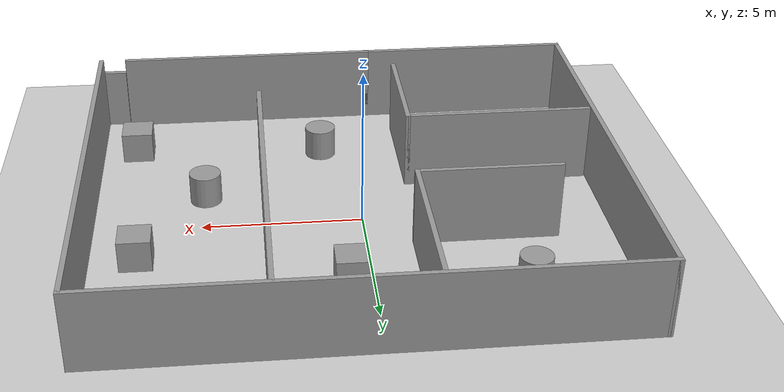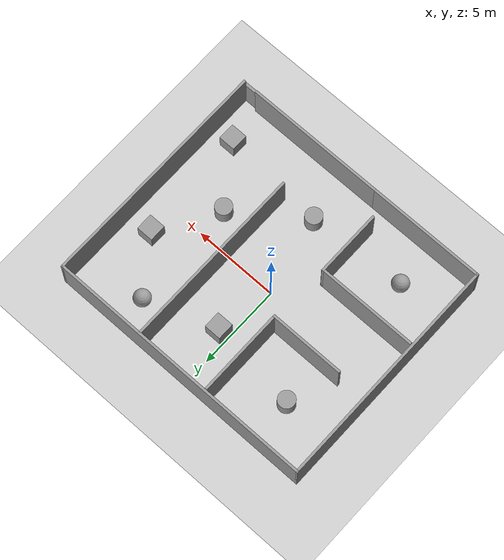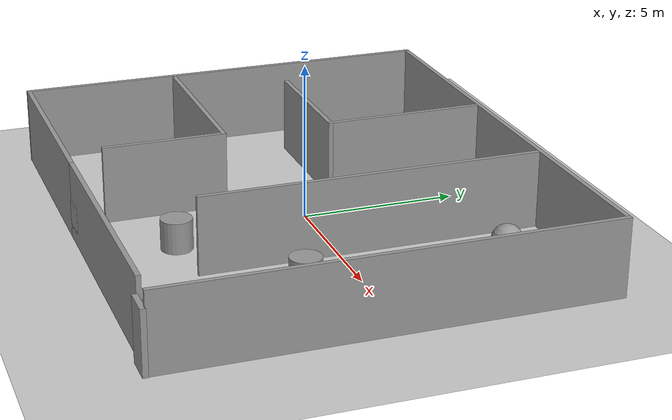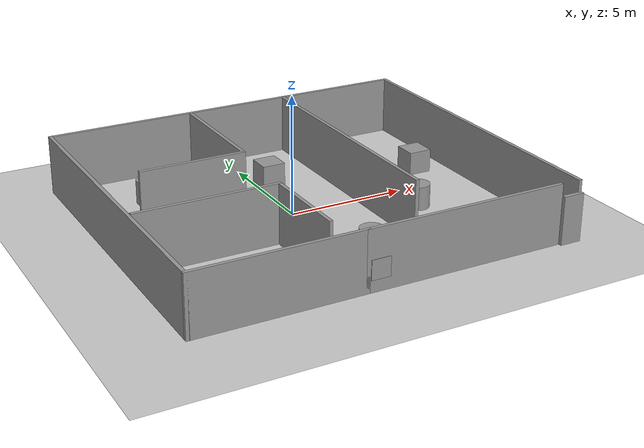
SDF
<sdf version="1.7">
 <world name="default">
  <light name="sun" type="directional">
   <pose>0 0 10 0 -0 0</pose>
   <diffuse>0.8 0.8 0.8 1</diffuse>
   <specular>0.2 0.2 0.2 1</specular>
   <attenuation>
    <range>1000</range>
    <constant>0.9</constant>
    <linear>0.01</linear>
    <quadratic>0.001</quadratic>
   </attenuation>
   <direction>-0.5 0.1 -0.9</direction>
   <spot><inner_angle>0</inner_angle><outer_angle>0</outer_angle><falloff>0</falloff></spot>
  </light>
  <model name="ground_plane">
   <static>1</static>
   <link name="link">
    <collision name="collision">
     <geometry><plane><normal>0 0 1</normal><size>100 100</size></plane></geometry>
     <surface><friction><ode><mu>100</mu><mu2>50</mu2></ode></friction></surface>
    </collision>
    <visual name="visual">
     <cast_shadows>0</cast_shadows>
     <geometry><plane><normal>0 0 1</normal><size>100 100</size></plane></geometry>
     <material>
      <script><uri>file://media/materials/scripts/gazebo.material</uri><name>Gazebo/Grey</name></script>
     </material>
    </visual>
   </link>
  </model>
  <gravity>0 0 -9.8</gravity>
  <magnetic_field>6e-06 2.3e-05 -4.2e-05</magnetic_field>
  <atmosphere type="adiabatic"/>
  <physics type="ode">
   <max_step_size>0.001</max_step_size>
   <real_time_factor>1</real_time_factor>
   <real_time_update_rate>1000</real_time_update_rate>
  </physics>
  <scene><ambient>0.4 0.4 0.4 1</ambient><background>0.7 0.7 0.7 1</background><shadows>1</shadows></scene>
  <audio><device>default</device></audio>
  <spherical_coordinates>
   <surface_model>EARTH_WGS84</surface_model>
   <latitude_deg>0</latitude_deg>
   <longitude_deg>0</longitude_deg>
   <elevation>0</elevation>
   <heading_deg>0</heading_deg>
  </spherical_coordinates>
  <model name="world">
   <pose>0.352034 -0.289109 0 0 -0 0</pose>
   <link name="Door_0">
    <collision name="Door_0_Collision">
     <geometry><box><size>0.9 0.17 2</size></box></geometry>
     <pose>0 0 1 0 -0 0</pose>
    </collision>
    <visual name="Door_0_Visual">
     <pose>0 0 1 0 -0 0</pose>
     <geometry><box><size>0.9 0.17 2</size></box></geometry>
     <material>
      <script><uri>file://media/materials/scripts/gazebo.material</uri><name>Gazebo/Grey</name></script>
     </material>
    </visual>
    <pose>7.69908 -7.04958 0 0 -0 0</pose>
   </link>
   <link name="Wall_11">
    <collision name="Wall_11_Collision">
     <geometry><box><size>5.25 0.15 2.5</size></box></geometry>
     <pose>0 0 1.25 0 -0 0</pose>
    </collision>
    <visual name="Wall_11_Visual">
     <pose>0 0 1.25 0 -0 0</pose>
     <geometry><box><size>5.25 0.15 2.5</size></box></geometry>
     <material>
      <script><uri>file://media/materials/scripts/gazebo.material</uri><name>Gazebo/Grey</name></script>
      <ambient>1 1 1 1</ambient>
     </material>
     <meta><layer>0</layer></meta>
    </visual>
    <pose>-1.82437 4.22158 0 0 -0 -1.5708</pose>
   </link>
   <link name="Wall_12">
    <collision name="Wall_12_Collision">
     <geometry><box><size>4.5 0.15 2.5</size></box></geometry>
     <pose>0 0 1.25 0 -0 0</pose>
    </collision>
    <visual name="Wall_12_Visual">
     <pose>0 0 1.25 0 -0 0</pose>
     <geometry><box><size>4.5 0.15 2.5</size></box></geometry>
     <material>
      <script><uri>file://media/materials/scripts/gazebo.material</uri><name>Gazebo/Grey</name></script>
      <ambient>1 1 1 1</ambient>
     </material>
     <meta><layer>0</layer></meta>
    </visual>
    <pose>-3.99937 1.67158 0 0 -0 3.14159</pose>
   </link>
   <link name="Wall_14">
    <collision name="Wall_14_Collision">
     <geometry><box><size>11 0.15 2.5</size></box></geometry>
     <pose>0 0 1.25 0 -0 0</pose>
    </collision>
    <visual name="Wall_14_Visual">
     <pose>0 0 1.25 0 -0 0</pose>
     <geometry><box><size>11 0.15 2.5</size></box></geometry>
     <material>
      <script><uri>file://media/materials/scripts/gazebo.material</uri><name>Gazebo/Grey</name></script>
      <ambient>1 1 1 1</ambient>
     </material>
     <meta><layer>0</layer></meta>
    </visual>
    <pose>2.66985 1.41856 0 0 -0 -1.5708</pose>
   </link>
   <link name="Wall_16">
    <collision name="Wall_16_Collision">
     <geometry><box><size>6 0.15 2.5</size></box></geometry>
     <pose>0 0 1.25 0 -0 0</pose>
    </collision>
    <visual name="Wall_16_Visual">
     <pose>0 0 1.25 0 -0 0</pose>
     <geometry><box><size>6 0.15 2.5</size></box></geometry>
     <material>
      <script><uri>file://media/materials/scripts/gazebo.material</uri><name>Gazebo/Grey</name></script>
      <ambient>1 1 1 1</ambient>
     </material>
     <meta><layer>0</layer></meta>
    </visual>
    <pose>-4.94515 -1.85984 0 0 -0 0</pose>
   </link>
   <link name="Wall_17">
    <collision name="Wall_17_Collision">
     <geometry><box><size>4 0.15 2.5</size></box></geometry>
     <pose>0 0 1.25 0 -0 0</pose>
    </collision>
    <visual name="Wall_17_Visual">
     <pose>0 0 1.25 0 -0 0</pose>
     <geometry><box><size>4 0.15 2.5</size></box></geometry>
     <material>
      <script><uri>file://media/materials/scripts/gazebo.material</uri><name>Gazebo/Grey</name></script>
      <ambient>1 1 1 1</ambient>
     </material>
     <meta><layer>0</layer></meta>
    </visual>
    <pose>-2.02015 -3.78484 0 0 -0 -1.5708</pose>
   </link>
   <link name="Wall_2">
    <collision name="Wall_2_Collision">
     <geometry><box><size>14 0.15 2.5</size></box></geometry>
     <pose>0 0 1.25 0 -0 0</pose>
    </collision>
    <visual name="Wall_2_Visual">
     <pose>0 0 1.25 0 -0 0</pose>
     <geometry><box><size>14 0.15 2.5</size></box></geometry>
     <material>
      <script><uri>file://media/materials/scripts/gazebo.material</uri><name>Gazebo/Grey</name></script>
      <ambient>1 1 1 1</ambient>
     </material>
     <meta><layer>0</layer></meta>
    </visual>
    <pose>-8.05 0 0 0 -0 1.5708</pose>
   </link>
   <link name="Wall_3">
    <collision name="Wall_3_Collision">
     <geometry><box><size>16.25 0.15 2.5</size></box></geometry>
     <pose>0 0 1.25 0 -0 0</pose>
    </collision>
    <visual name="Wall_3_Visual">
     <pose>0 0 1.25 0 -0 0</pose>
     <geometry><box><size>16.25 0.15 2.5</size></box></geometry>
     <material>
      <script><uri>file://media/materials/scripts/gazebo.material</uri><name>Gazebo/Grey</name></script>
      <ambient>1 1 1 1</ambient>
     </material>
     <meta><layer>0</layer></meta>
    </visual>
    <pose>0 6.925 0 0 -0 0</pose>
   </link>
   <link name="Wall_5">
    <collision name="Wall_5_Collision">
     <geometry><box><size>14 0.15 2.5</size></box></geometry>
     <pose>0 0 1.25 0 -0 0</pose>
    </collision>
    <visual name="Wall_5_Visual">
     <pose>0 0 1.25 0 -0 0</pose>
     <geometry><box><size>14 0.15 2.5</size></box></geometry>
     <material>
      <script><uri>file://media/materials/scripts/gazebo.material</uri><name>Gazebo/Grey</name></script>
      <ambient>1 1 1 1</ambient>
     </material>
     <meta><layer>0</layer></meta>
    </visual>
    <pose>8.05 0 0 0 -0 -1.5708</pose>
   </link>
   <link name="Wall_7">
    <collision name="Wall_7_Collision">
     <geometry><box><size>7 0.15 2.5</size></box></geometry>
     <pose>0 0 1.25 0 -0 0</pose>
    </collision>
    <visual name="Wall_7_Visual">
     <pose>0 0 1.25 0 -0 0</pose>
     <geometry><box><size>7 0.15 2.5</size></box></geometry>
     <material>
      <script><uri>file://media/materials/scripts/gazebo.material</uri><name>Gazebo/Grey</name></script>
      <ambient>1 1 1 1</ambient>
     </material>
     <meta><layer>0</layer></meta>
    </visual>
    <pose>-4.625 -6.925 0 0 -0 0</pose>
   </link>
   <link name="Wall_9">
    <collision name="Wall_9_Collision">
     <geometry><box><size>8.5 0.15 2.5</size></box></geometry>
     <pose>0 0 1.25 0 -0 0</pose>
    </collision>
    <visual name="Wall_9_Visual">
     <pose>0 0 1.25 0 -0 0</pose>
     <geometry><box><size>8.5 0.15 2.5</size></box></geometry>
     <material>
      <script><uri>file://media/materials/scripts/gazebo.material</uri><name>Gazebo/Grey</name></script>
      <ambient>1 1 1 1</ambient>
     </material>
     <meta><layer>0</layer></meta>
    </visual>
    <pose>2.975 -6.925 0 0 -0 0</pose>
   </link>
   <link name="Window_1">
    <collision name="Window_1_Collision">
     <geometry><box><size>0.8 0.17 0.8</size></box></geometry>
     <pose>0 0 0.4 0 -0 0</pose>
    </collision>
    <visual name="Window_1_Visual">
     <pose>0 0 0.4 0 -0 0</pose>
     <geometry><box><size>0.8 0.17 0.8</size></box></geometry>
     <material>
      <script><uri>file://media/materials/scripts/gazebo.material</uri><name>Gazebo/Grey</name></script>
     </material>
    </visual>
    <pose>-0.700812 -6.94258 0.5 0 -0 0</pose>
   </link>
   <static>1</static>
  </model>
  <model name="unit_box">
   <pose>0.635765 3.32757 0.499995 -1e-05 -0 -0</pose>
   <link name="link">
    <inertial>
     <mass>1</mass>
     <inertia>
      <ixx>0.166667</ixx>
      <ixy>0</ixy>
      <ixz>0</ixz>
      <iyy>0.166667</iyy>
      <iyz>0</iyz>
      <izz>0.166667</izz>
     </inertia>
    </inertial>
    <collision name="collision"><geometry><box><size>1 1 1</size></box></geometry></collision>
    <visual name="visual">
     <geometry><box><size>1 1 1</size></box></geometry>
     <material>
      <script><name>Gazebo/Grey</name><uri>file://media/materials/scripts/gazebo.material</uri></script>
     </material>
    </visual>
   </link>
  </model>
  <model name="unit_cylinder">
   <pose>0.99625 -4.45932 0.499992 -3e-06 4e-06 0</pose>
   <link name="link">
    <inertial>
     <mass>1</mass>
     <inertia><ixx>0.145833</ixx><ixy>0</ixy><ixz>0</ixz><iyy>0.145833</iyy><iyz>0</iyz><izz>0.125</izz></inertia>
    </inertial>
    <collision name="collision">
     <geometry><cylinder><radius>0.5</radius><length>1</length></cylinder></geometry>
    </collision>
    <visual name="visual">
     <geometry><cylinder><radius>0.5</radius><length>1</length></cylinder></geometry>
     <material>
      <script><name>Gazebo/Grey</name><uri>file://media/materials/scripts/gazebo.material</uri></script>
     </material>
    </visual>
   </link>
  </model>
  <model name="unit_cylinder_0">
   <pose>-4.5926 3.92407 0.499992 -4e-06 4e-06 0</pose>
   <link name="link">
    <inertial>
     <mass>1</mass>
     <inertia><ixx>0.145833</ixx><ixy>0</ixy><ixz>0</ixz><iyy>0.145833</iyy><iyz>0</iyz><izz>0.125</izz></inertia>
    </inertial>
    <collision name="collision">
     <geometry><cylinder><radius>0.5</radius><length>1</length></cylinder></geometry>
    </collision>
    <visual name="visual">
     <geometry><cylinder><radius>0.5</radius><length>1</length></cylinder></geometry>
     <material>
      <script><name>Gazebo/Grey</name><uri>file://media/materials/scripts/gazebo.material</uri></script>
     </material>
    </visual>
   </link>
  </model>
  <model name="unit_sphere">
   <pose>-4.74383 -4.81185 0.5 0 -0 0</pose>
   <link name="link">
    <inertial>
     <mass>1</mass>
     <inertia><ixx>0.1</ixx><ixy>0</ixy><ixz>0</ixz><iyy>0.1</iyy><iyz>0</iyz><izz>0.1</izz></inertia>
    </inertial>
    <collision name="collision"><geometry><sphere><radius>0.5</radius></sphere></geometry></collision>
    <visual name="visual">
     <geometry><sphere><radius>0.5</radius></sphere></geometry>
     <material>
      <script><name>Gazebo/Grey</name><uri>file://media/materials/scripts/gazebo.material</uri></script>
     </material>
    </visual>
   </link>
  </model>
  <model name="unit_sphere_0">
   <pose>4.71907 4.76824 0.5 0 -0 0</pose>
   <link name="link">
    <inertial>
     <mass>1</mass>
     <inertia><ixx>0.1</ixx><ixy>0</ixy><ixz>0</ixz><iyy>0.1</iyy><iyz>0</iyz><izz>0.1</izz></inertia>
    </inertial>
    <collision name="collision"><geometry><sphere><radius>0.5</radius></sphere></geometry></collision>
    <visual name="visual">
     <geometry><sphere><radius>0.5</radius></sphere></geometry>
     <material>
      <script><name>Gazebo/Grey</name><uri>file://media/materials/scripts/gazebo.material</uri></script>
     </material>
    </visual>
   </link>
  </model>
  <model name="unit_box_0">
   <pose>7.15419 -4.91837 0.499995 0 1e-05 0</pose>
   <link name="link">
    <inertial>
     <mass>1</mass>
     <inertia>
      <ixx>0.166667</ixx>
      <ixy>0</ixy>
      <ixz>0</ixz>
      <iyy>0.166667</iyy>
      <iyz>0</iyz>
      <izz>0.166667</izz>
     </inertia>
    </inertial>
    <collision name="collision"><geometry><box><size>1 1 1</size></box></geometry></collision>
    <visual name="visual">
     <geometry><box><size>1 1 1</size></box></geometry>
     <material>
      <script><name>Gazebo/Grey</name><uri>file://media/materials/scripts/gazebo.material</uri></script>
     </material>
    </visual>
   </link>
  </model>
  <model name="unit_cylinder_1">
   <pose>4.86261 -1.67973 0.499993 -3e-06 -4e-06 -0</pose>
   <link name="link">
    <inertial>
     <mass>1</mass>
     <inertia><ixx>0.145833</ixx><ixy>0</ixy><ixz>0</ixz><iyy>0.145833</iyy><iyz>0</iyz><izz>0.125</izz></inertia>
    </inertial>
    <collision name="collision">
     <geometry><cylinder><radius>0.5</radius><length>1</length></cylinder></geometry>
    </collision>
    <visual name="visual">
     <geometry><cylinder><radius>0.5</radius><length>1</length></cylinder></geometry>
     <material>
      <script><name>Gazebo/Grey</name><uri>file://media/materials/scripts/gazebo.material</uri></script>
     </material>
    </visual>
   </link>
  </model>
  <model name="unit_box_1">
   <pose>6.90388 1.72934 0.5 0 -0 0</pose>
   <link name="link">
    <inertial>
     <mass>1</mass>
     <inertia>
      <ixx>0.166667</ixx>
      <ixy>0</ixy>
      <ixz>0</ixz>
      <iyy>0.166667</iyy>
      <iyz>0</iyz>
      <izz>0.166667</izz>
     </inertia>
    </inertial>
    <collision name="collision"><geometry><box><size>1 1 1</size></box></geometry></collision>
    <visual name="visual">
     <geometry><box><size>1 1 1</size></box></geometry>
     <material>
      <script><name>Gazebo/Grey</name><uri>file://media/materials/scripts/gazebo.material</uri></script>
     </material>
    </visual>
   </link>
  </model>
 </world>
</sdf>
